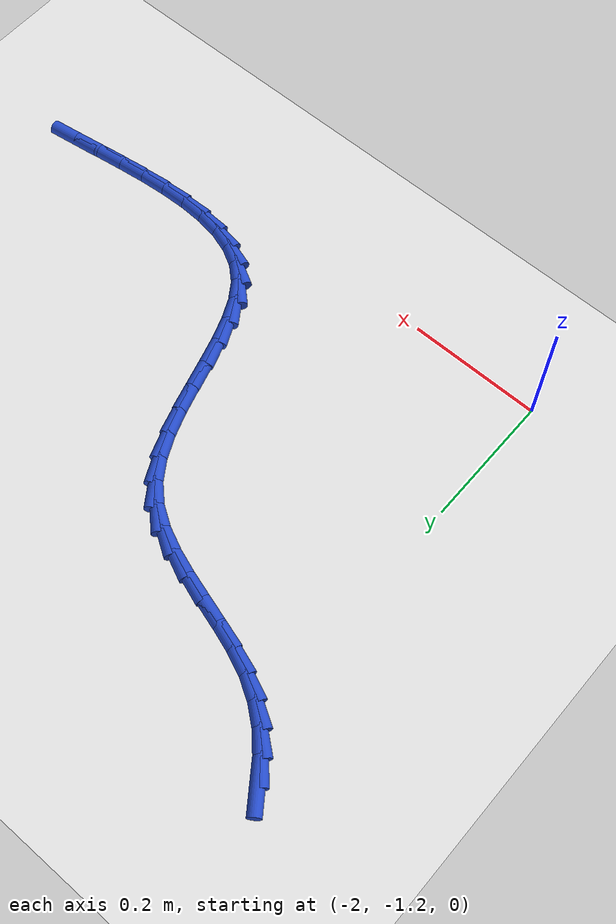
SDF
<sdf version="1.6">
 <world name="default">
  <model name="ground_plane">
   <static>1</static>
   <link name="link">
    <collision name="collision">
     <geometry><plane><normal>0 0 1</normal><size>100 100</size></plane></geometry>
     <surface><friction><ode><mu>100</mu><mu2>50</mu2></ode></friction></surface>
    </collision>
    <visual name="visual">
     <cast_shadows>0</cast_shadows>
     <geometry><plane><normal>0 0 1</normal><size>100 100</size></plane></geometry>
     <material>
      <script><uri>file://media/materials/scripts/gazebo.material</uri><name>Gazebo/WhiteGlow</name></script>
     </material>
    </visual>
   </link>
  </model>
  <model name="line">
   <link name="link_110">
    <pose>-2.0550246697867145 -0.5689005020141713 0.01 0 1.57 -0.9511473532711286</pose>
    <collision name="collision">
     <geometry><cylinder><radius>0.01</radius><length>0.08</length></cylinder></geometry>
    </collision>
    <visual name="visual">
     <material>
      <script><name>Gazebo/Blue</name><uri>file://media/materials/scripts/gazebo.material</uri></script>
     </material>
     <geometry><cylinder><radius>0.01</radius><length>0.08</length></cylinder></geometry>
    </visual>
   </link>
   <link name="link_111">
    <pose>-2.0345511081100347 -0.5975999110885726 0.01 0 1.57 -0.8273803397874234</pose>
    <collision name="collision">
     <geometry><cylinder><radius>0.01</radius><length>0.08</length></cylinder></geometry>
    </collision>
    <visual name="visual">
     <material>
      <script><name>Gazebo/Blue</name><uri>file://media/materials/scripts/gazebo.material</uri></script>
     </material>
     <geometry><cylinder><radius>0.01</radius><length>0.08</length></cylinder></geometry>
    </visual>
   </link>
   <link name="link_112">
    <pose>-2.0110822448074823 -0.6231269378034788 0.01 0 1.57 -0.6864907664412309</pose>
    <collision name="collision">
     <geometry><cylinder><radius>0.01</radius><length>0.08</length></cylinder></geometry>
    </collision>
    <visual name="visual">
     <material>
      <script><name>Gazebo/Blue</name><uri>file://media/materials/scripts/gazebo.material</uri></script>
     </material>
     <geometry><cylinder><radius>0.01</radius><length>0.08</length></cylinder></geometry>
    </visual>
   </link>
   <link name="link_113">
    <pose>-1.984303839894199 -0.6450705945454609 0.01 0 1.57 -0.534187047142149</pose>
    <collision name="collision">
     <geometry><cylinder><radius>0.01</radius><length>0.08</length></cylinder></geometry>
    </collision>
    <visual name="visual">
     <material>
      <script><name>Gazebo/Blue</name><uri>file://media/materials/scripts/gazebo.material</uri></script>
     </material>
     <geometry><cylinder><radius>0.01</radius><length>0.08</length></cylinder></geometry>
    </visual>
   </link>
   <link name="link_114">
    <pose>-1.9539219194652815 -0.6630431816019609 0.01 0 1.57 -0.40315321092652284</pose>
    <collision name="collision">
     <geometry><cylinder><radius>0.01</radius><length>0.08</length></cylinder></geometry>
    </collision>
    <visual name="visual">
     <material>
      <script><name>Gazebo/Blue</name><uri>file://media/materials/scripts/gazebo.material</uri></script>
     </material>
     <geometry><cylinder><radius>0.01</radius><length>0.08</length></cylinder></geometry>
    </visual>
   </link>
   <link name="link_115">
    <pose>-1.9202815375150477 -0.6773913108986632 0.01 0 1.57 -0.3218008112303752</pose>
    <collision name="collision">
     <geometry><cylinder><radius>0.01</radius><length>0.08</length></cylinder></geometry>
    </collision>
    <visual name="visual">
     <material>
      <script><name>Gazebo/Blue</name><uri>file://media/materials/scripts/gazebo.material</uri></script>
     </material>
     <geometry><cylinder><radius>0.01</radius><length>0.08</length></cylinder></geometry>
    </visual>
   </link>
   <link name="link_116">
    <pose>-1.8844807712410843 -0.6893268988380971 0.01 0 1.57 -0.2849340483531109</pose>
    <collision name="collision">
     <geometry><cylinder><radius>0.01</radius><length>0.08</length></cylinder></geometry>
    </collision>
    <visual name="visual">
     <material>
      <script><name>Gazebo/Blue</name><uri>file://media/materials/scripts/gazebo.material</uri></script>
     </material>
     <geometry><cylinder><radius>0.01</radius><length>0.08</length></cylinder></geometry>
    </visual>
   </link>
   <link name="link_117">
    <pose>-1.8476609557272792 -0.700111569776697 0.01 0 1.57 -0.28860737520639024</pose>
    <collision name="collision">
     <geometry><cylinder><radius>0.01</radius><length>0.08</length></cylinder></geometry>
    </collision>
    <visual name="visual">
     <material>
      <script><name>Gazebo/Blue</name><uri>file://media/materials/scripts/gazebo.material</uri></script>
     </material>
     <geometry><cylinder><radius>0.01</radius><length>0.08</length></cylinder></geometry>
    </visual>
   </link>
   <link name="link_118">
    <pose>-1.8109634260575227 -0.7110069480708966 0.01 0 1.57 -0.3332978844857129</pose>
    <collision name="collision">
     <geometry><cylinder><radius>0.01</radius><length>0.08</length></cylinder></geometry>
    </collision>
    <visual name="visual">
     <material>
      <script><name>Gazebo/Blue</name><uri>file://media/materials/scripts/gazebo.material</uri></script>
     </material>
     <geometry><cylinder><radius>0.01</radius><length>0.08</length></cylinder></geometry>
    </visual>
   </link>
   <link name="link_119">
    <pose>-1.775529517315703 -0.7232746580771314 0.01 0 1.57 -0.42382630875149835</pose>
    <collision name="collision">
     <geometry><cylinder><radius>0.01</radius><length>0.08</length></cylinder></geometry>
    </collision>
    <visual name="visual">
     <material>
      <script><name>Gazebo/Blue</name><uri>file://media/materials/scripts/gazebo.material</uri></script>
     </material>
     <geometry><cylinder><radius>0.01</radius><length>0.08</length></cylinder></geometry>
    </visual>
   </link>
   <link name="link_120">
    <pose>-1.74250056458571 -0.7381763241518351 0.01 0 1.57 -0.5675870559424805</pose>
    <collision name="collision">
     <geometry><cylinder><radius>0.01</radius><length>0.08</length></cylinder></geometry>
    </collision>
    <visual name="visual">
     <material>
      <script><name>Gazebo/Blue</name><uri>file://media/materials/scripts/gazebo.material</uri></script>
     </material>
     <geometry><cylinder><radius>0.01</radius><length>0.08</length></cylinder></geometry>
    </visual>
   </link>
   <link name="link_121">
    <pose>-1.7130179029514325 -0.7569735706514422 0.01 0 1.57 -0.7672953012095741</pose>
    <collision name="collision">
     <geometry><cylinder><radius>0.01</radius><length>0.08</length></cylinder></geometry>
    </collision>
    <visual name="visual">
     <material>
      <script><name>Gazebo/Blue</name><uri>file://media/materials/scripts/gazebo.material</uri></script>
     </material>
     <geometry><cylinder><radius>0.01</radius><length>0.08</length></cylinder></geometry>
    </visual>
   </link>
   <link name="link_122">
    <pose>-1.6882033951695747 -0.7809055314212979 0.01 0 1.57 -0.9739917734089073</pose>
    <collision name="collision">
     <geometry><cylinder><radius>0.01</radius><length>0.08</length></cylinder></geometry>
    </collision>
    <visual name="visual">
     <material>
      <script><name>Gazebo/Blue</name><uri>file://media/materials/scripts/gazebo.material</uri></script>
     </material>
     <geometry><cylinder><radius>0.01</radius><length>0.08</length></cylinder></geometry>
    </visual>
   </link>
   <link name="link_123">
    <pose>-1.6683009359522463 -0.8101972884240354 0.01 0 1.57 -1.1258113800978606</pose>
    <collision name="collision">
     <geometry><cylinder><radius>0.01</radius><length>0.08</length></cylinder></geometry>
    </collision>
    <visual name="visual">
     <material>
      <script><name>Gazebo/Blue</name><uri>file://media/materials/scripts/gazebo.material</uri></script>
     </material>
     <geometry><cylinder><radius>0.01</radius><length>0.08</length></cylinder></geometry>
    </visual>
   </link>
   <link name="link_124">
    <pose>-1.6523385212186361 -0.8436695621905258 0.01 0 1.57 -1.225475415647384</pose>
    <collision name="collision">
     <geometry><cylinder><radius>0.01</radius><length>0.08</length></cylinder></geometry>
    </collision>
    <visual name="visual">
     <material>
      <script><name>Gazebo/Blue</name><uri>file://media/materials/scripts/gazebo.material</uri></script>
     </material>
     <geometry><cylinder><radius>0.01</radius><length>0.08</length></cylinder></geometry>
    </visual>
   </link>
   <link name="link_125">
    <pose>-1.6392548338762805 -0.8800399168461464 0.01 0 1.57 -1.282470673863479</pose>
    <collision name="collision">
     <geometry><cylinder><radius>0.01</radius><length>0.08</length></cylinder></geometry>
    </collision>
    <visual name="visual">
     <material>
      <script><name>Gazebo/Blue</name><uri>file://media/materials/scripts/gazebo.material</uri></script>
     </material>
     <geometry><cylinder><radius>0.01</radius><length>0.08</length></cylinder></geometry>
    </visual>
   </link>
   <link name="link_126">
    <pose>-1.6279885568327126 -0.9180259165162761 0.01 0 1.57 -1.3030998297926626</pose>
    <collision name="collision">
     <geometry><cylinder><radius>0.01</radius><length>0.08</length></cylinder></geometry>
    </collision>
    <visual name="visual">
     <material>
      <script><name>Gazebo/Blue</name><uri>file://media/materials/scripts/gazebo.material</uri></script>
     </material>
     <geometry><cylinder><radius>0.01</radius><length>0.08</length></cylinder></geometry>
    </visual>
   </link>
   <link name="link_127">
    <pose>-1.6174783729954696 -0.9563451253262928 0.01 0 1.57 -1.2890792403932296</pose>
    <collision name="collision">
     <geometry><cylinder><radius>0.01</radius><length>0.08</length></cylinder></geometry>
    </collision>
    <visual name="visual">
     <material>
      <script><name>Gazebo/Blue</name><uri>file://media/materials/scripts/gazebo.material</uri></script>
     </material>
     <geometry><cylinder><radius>0.01</radius><length>0.08</length></cylinder></geometry>
    </visual>
   </link>
   <link name="link_128">
    <pose>-1.6066629652720856 -0.9937151074015743 0.01 0 1.57 -1.2370772651731659</pose>
    <collision name="collision">
     <geometry><cylinder><radius>0.01</radius><length>0.08</length></cylinder></geometry>
    </collision>
    <visual name="visual">
     <material>
      <script><name>Gazebo/Blue</name><uri>file://media/materials/scripts/gazebo.material</uri></script>
     </material>
     <geometry><cylinder><radius>0.01</radius><length>0.08</length></cylinder></geometry>
    </visual>
   </link>
   <link name="link_129">
    <pose>-1.5944810165700969 -1.0288534268674985 0.01 0 1.57 -1.138023331195498</pose>
    <collision name="collision">
     <geometry><cylinder><radius>0.01</radius><length>0.08</length></cylinder></geometry>
    </collision>
    <visual name="visual">
     <material>
      <script><name>Gazebo/Blue</name><uri>file://media/materials/scripts/gazebo.material</uri></script>
     </material>
     <geometry><cylinder><radius>0.01</radius><length>0.08</length></cylinder></geometry>
    </visual>
   </link>
   <link name="link_130">
    <pose>-1.5798712097970378 -1.0604776478494427 0.01 0 1.57 -0.9772952619129183</pose>
    <collision name="collision">
     <geometry><cylinder><radius>0.01</radius><length>0.08</length></cylinder></geometry>
    </collision>
    <visual name="visual">
     <material>
      <script><name>Gazebo/Blue</name><uri>file://media/materials/scripts/gazebo.material</uri></script>
     </material>
     <geometry><cylinder><radius>0.01</radius><length>0.08</length></cylinder></geometry>
    </visual>
   </link>
   <link name="link_131">
    <pose>-1.5617722278604438 -1.0873053344727859 0.01 0 1.57 -0.7486364206177594</pose>
    <collision name="collision">
     <geometry><cylinder><radius>0.01</radius><length>0.08</length></cylinder></geometry>
    </collision>
    <visual name="visual">
     <material>
      <script><name>Gazebo/Blue</name><uri>file://media/materials/scripts/gazebo.material</uri></script>
     </material>
     <geometry><cylinder><radius>0.01</radius><length>0.08</length></cylinder></geometry>
    </visual>
   </link>
   <link name="link_132">
    <pose>-1.5392587706024583 -1.1082215226801608 0.01 0 1.57 -0.513321288852258</pose>
    <collision name="collision">
     <geometry><cylinder><radius>0.01</radius><length>0.08</length></cylinder></geometry>
    </collision>
    <visual name="visual">
     <material>
      <script><name>Gazebo/Blue</name><uri>file://media/materials/scripts/gazebo.material</uri></script>
     </material>
     <geometry><cylinder><radius>0.01</radius><length>0.08</length></cylinder></geometry>
    </visual>
   </link>
   <link name="link_133">
    <pose>-1.5124149628926946 -1.1233541101521394 0.01 0 1.57 -0.3165703221691744</pose>
    <collision name="collision">
     <geometry><cylinder><radius>0.01</radius><length>0.08</length></cylinder></geometry>
    </collision>
    <visual name="visual">
     <material>
      <script><name>Gazebo/Blue</name><uri>file://media/materials/scripts/gazebo.material</uri></script>
     </material>
     <geometry><cylinder><radius>0.01</radius><length>0.08</length></cylinder></geometry>
    </visual>
   </link>
   <link name="link_134">
    <pose>-1.481778995705254 -1.1333900666869814 0.01 0 1.57 -0.16460357511246607</pose>
    <collision name="collision">
     <geometry><cylinder><radius>0.01</radius><length>0.08</length></cylinder></geometry>
    </collision>
    <visual name="visual">
     <material>
      <script><name>Gazebo/Blue</name><uri>file://media/materials/scripts/gazebo.material</uri></script>
     </material>
     <geometry><cylinder><radius>0.01</radius><length>0.08</length></cylinder></geometry>
    </visual>
   </link>
   <link name="link_135">
    <pose>-1.4478912371912525 -1.1390190427476188 0.01 0 1.57 -0.05218451250456794</pose>
    <collision name="collision">
     <geometry><cylinder><radius>0.01</radius><length>0.08</length></cylinder></geometry>
    </collision>
    <visual name="visual">
     <material>
      <script><name>Gazebo/Blue</name><uri>file://media/materials/scripts/gazebo.material</uri></script>
     </material>
     <geometry><cylinder><radius>0.01</radius><length>0.08</length></cylinder></geometry>
    </visual>
   </link>
   <link name="link_136">
    <pose>-1.4112920555018058 -1.140930688796984 0.01 0 1.57 0.028777884513943443</pose>
    <collision name="collision">
     <geometry><cylinder><radius>0.01</radius><length>0.08</length></cylinder></geometry>
    </collision>
    <visual name="visual">
     <material>
      <script><name>Gazebo/Blue</name><uri>file://media/materials/scripts/gazebo.material</uri></script>
     </material>
     <geometry><cylinder><radius>0.01</radius><length>0.08</length></cylinder></geometry>
    </visual>
   </link>
   <link name="link_137">
    <pose>-1.3725218187880301 -1.1398146552980088 0.01 0 1.57 0.08528724994122532</pose>
    <collision name="collision">
     <geometry><cylinder><radius>0.01</radius><length>0.08</length></cylinder></geometry>
    </collision>
    <visual name="visual">
     <material>
      <script><name>Gazebo/Blue</name><uri>file://media/materials/scripts/gazebo.material</uri></script>
     </material>
     <geometry><cylinder><radius>0.01</radius><length>0.08</length></cylinder></geometry>
    </visual>
   </link>
   <link name="link_138">
    <pose>-1.3321208952010417 -1.136360592713625 0.01 0 1.57 0.12236197605556004</pose>
    <collision name="collision">
     <geometry><cylinder><radius>0.01</radius><length>0.08</length></cylinder></geometry>
    </collision>
    <visual name="visual">
     <material>
      <script><name>Gazebo/Blue</name><uri>file://media/materials/scripts/gazebo.material</uri></script>
     </material>
     <geometry><cylinder><radius>0.01</radius><length>0.08</length></cylinder></geometry>
    </visual>
   </link>
   <link name="link_139">
    <pose>-1.2906296528919579 -1.131258151506766 0.01 0 1.57 0.1431855283503925</pose>
    <collision name="collision">
     <geometry><cylinder><radius>0.01</radius><length>0.08</length></cylinder></geometry>
    </collision>
    <visual name="visual">
     <material>
      <script><name>Gazebo/Blue</name><uri>file://media/materials/scripts/gazebo.material</uri></script>
     </material>
     <geometry><cylinder><radius>0.01</radius><length>0.08</length></cylinder></geometry>
    </visual>
   </link>
   <link name="link_140">
    <pose>-1.2485884600118922 -1.1251969821403622 0.01 0 1.57 0.14941624066865028</pose>
    <collision name="collision">
     <geometry><cylinder><radius>0.01</radius><length>0.08</length></cylinder></geometry>
    </collision>
    <visual name="visual">
     <material>
      <script><name>Gazebo/Blue</name><uri>file://media/materials/scripts/gazebo.material</uri></script>
     </material>
     <geometry><cylinder><radius>0.01</radius><length>0.08</length></cylinder></geometry>
    </visual>
   </link>
   <link name="link_141">
    <pose>-1.2065376847119622 -1.1188667350773471 0.01 0 1.57 0.14138358408262655</pose>
    <collision name="collision">
     <geometry><cylinder><radius>0.01</radius><length>0.08</length></cylinder></geometry>
    </collision>
    <visual name="visual">
     <material>
      <script><name>Gazebo/Blue</name><uri>file://media/materials/scripts/gazebo.material</uri></script>
     </material>
     <geometry><cylinder><radius>0.01</radius><length>0.08</length></cylinder></geometry>
    </visual>
   </link>
  </model>
 </world>
</sdf>
